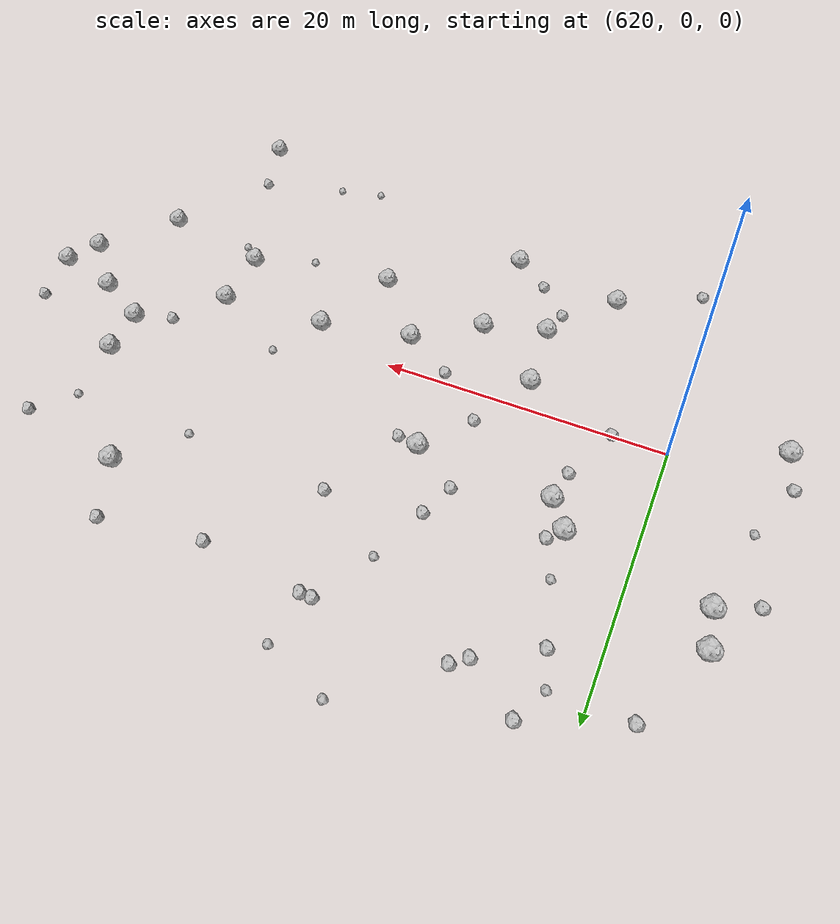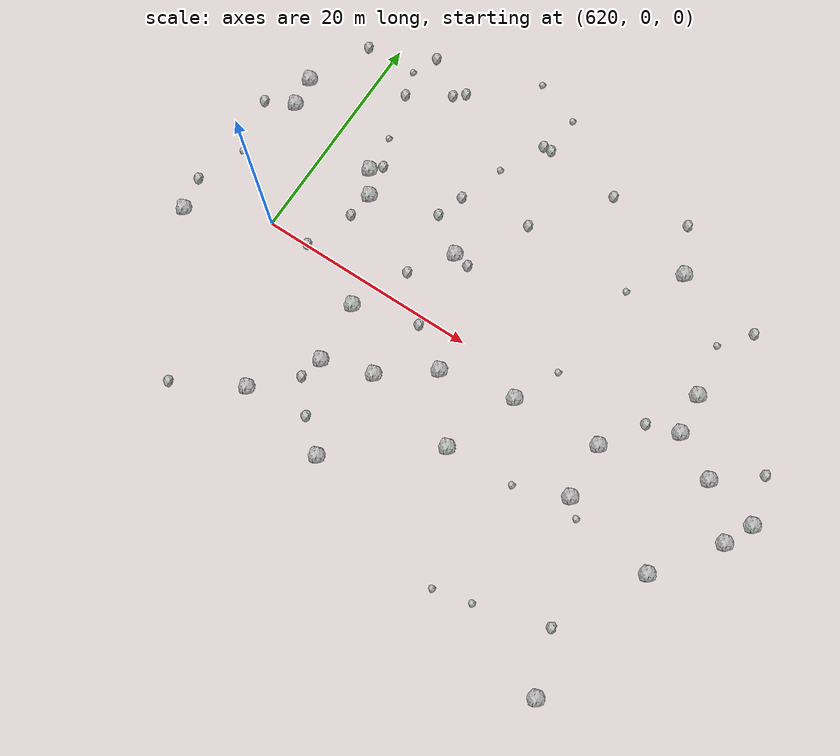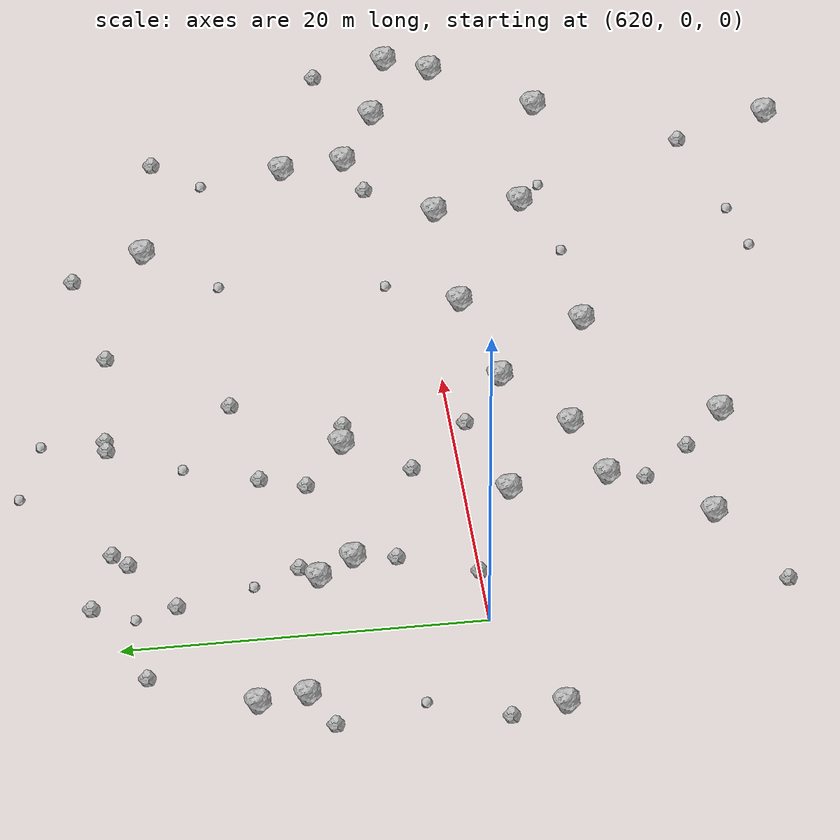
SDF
<sdf version="1.6">
 <world name="default">
  <include><uri>model://sun</uri></include>
  <model name="rock1_16_3">
   <include><uri>model://rock1</uri><pose>630.8154450928639 -7.932889221351591 0.5 0 0 0</pose></include>
  </model>
  <model name="rock1_16_4">
   <include><uri>model://rock1</uri><pose>663.5097029108947 1.1319846429065237 0.5 0 0 0</pose></include>
  </model>
  <model name="rock1_16_5">
   <include><uri>model://rock1</uri><pose>625.748624921509 6.756915886533903 0.5 0 0 0</pose></include>
  </model>
  <model name="rock1_16_6">
   <include><uri>model://rock1</uri><pose>630.2575597607987 -2.428134500840404 0.5 0 0 0</pose></include>
  </model>
  <model name="rock1_16_7">
   <include><uri>model://rock1</uri><pose>654.3668648091672 -1.3723912604112591 0.5 0 0 0</pose></include>
  </model>
  <model name="rock1_16_8">
   <include><uri>model://rock1</uri><pose>654.7077179614729 -6.343117035888216 0.5 0 0 0</pose></include>
  </model>
  <model name="rock1_16_9">
   <include><uri>model://rock1</uri><pose>660.9171693849238 -21.424856002348484 0.5 0 0 0</pose></include>
  </model>
  <model name="rock1_16_10">
   <include><uri>model://rock1</uri><pose>615.1779663735622 10.4533159929831 0.5 0 0 0</pose></include>
  </model>
  <model name="rock1_16_11">
   <include><uri>model://rock1</uri><pose>614.8407516752358 13.1697537534479 0.5 0 0 0</pose></include>
  </model>
  <model name="rock1_16_12">
   <include><uri>model://rock1</uri><pose>659.526074364443 3.25666021357884 0.5 0 0 0</pose></include>
  </model>
  <model name="rock1_16_13">
   <include><uri>model://rock1</uri><pose>612.8345161557804 -3.1511152966365508 0.5 0 0 0</pose></include>
  </model>
  <model name="rock1_16_14">
   <include><uri>model://rock1</uri><pose>624.361800174929 8.803067293032093 0.5 0 0 0</pose></include>
  </model>
  <model name="rock1_16_15">
   <include><uri>model://rock1</uri><pose>639.7185940753745 -3.190483686303711 0.5 0 0 0</pose></include>
  </model>
  <model name="rock1_16_16">
   <include><uri>model://rock1</uri><pose>663.2465457869657 -8.280023741431727 0.5 0 0 0</pose></include>
  </model>
  <model name="rock1_16_17">
   <include><uri>model://rock1</uri><pose>643.936844390696 -8.389508698008157 0.5 0 0 0</pose></include>
  </model>
  <model name="rock1_16_18">
   <include><uri>model://rock1</uri><pose>667.2190989181457 -2.7004065320523836 0.5 0 0 0</pose></include>
  </model>
  <model name="rock1_16_19">
   <include><uri>model://rock1</uri><pose>652.6855516471367 15.527646410879107 0.5 0 0 0</pose></include>
  </model>
  <model name="rock1_16_20">
   <include><uri>model://rock1</uri><pose>668.3928591723438 -0.19498571861639036 0.5 0 0 0</pose></include>
  </model>
  <model name="rock1_16_21">
   <include><uri>model://rock1</uri><pose>635.3028392953731 -14.916657535718876 0.5 0 0 0</pose></include>
  </model>
  <model name="rock1_16_22">
   <include><uri>model://rock1</uri><pose>635.0907181450273 6.258589487409253 0.5 0 0 0</pose></include>
  </model>
  <model name="rock1_16_23">
   <include><uri>model://rock1</uri><pose>626.9872990946752 -13.30249398510507 0.5 0 0 0</pose></include>
  </model>
  <model name="rock1_16_24">
   <include><uri>model://rock1</uri><pose>659.1156152641955 6.861521552667064 0.5 0 0 0</pose></include>
  </model>
  <model name="rock1_16_25">
   <include><uri>model://rock1</uri><pose>635.2794479255829 -6.5291390917065115 0.5 0 0 0</pose></include>
  </model>
  <model name="rock1_16_26">
   <include><uri>model://rock1</uri><pose>646.3740256460313 -1.7842494684525327 0.5 0 0 0</pose></include>
  </model>
  <model name="rock2_16_0">
   <include><uri>model://rock2</uri><pose>667.2345739720057 4.066101877020003 0.3 0 0 0</pose></include>
  </model>
  <model name="rock2_16_1">
   <include><uri>model://rock2</uri><pose>623.7472787860576 0.06350169430626451 0.3 0 0 0</pose></include>
  </model>
  <model name="rock2_16_2">
   <include><uri>model://rock2</uri><pose>622.8961979006892 16.6503281654026 0.3 0 0 0</pose></include>
  </model>
  <model name="rock2_16_3">
   <include><uri>model://rock2</uri><pose>643.754279756744 18.474067236592283 0.3 0 0 0</pose></include>
  </model>
  <model name="rock2_16_4">
   <include><uri>model://rock2</uri><pose>636.5351724261019 6.009415532582331 0.3 0 0 0</pose></include>
  </model>
  <model name="rock2_16_5">
   <include><uri>model://rock2</uri><pose>632.5295066696275 -12.612082334043006 0.3 0 0 0</pose></include>
  </model>
  <model name="rock2_16_6">
   <include><uri>model://rock2</uri><pose>623.229313393547 21.2519897638008 0.3 0 0 0</pose></include>
  </model>
  <model name="rock2_16_7">
   <include><uri>model://rock2</uri><pose>650.6170565523466 19.67872364875732 0.3 0 0 0</pose></include>
  </model>
  <model name="rock2_16_8">
   <include><uri>model://rock2</uri><pose>627.4238524369305 19.72100392324147 0.3 0 0 0</pose></include>
  </model>
  <model name="rock2_16_9">
   <include><uri>model://rock2</uri><pose>635.9772062320228 -0.752779404726077 0.3 0 0 0</pose></include>
  </model>
  <model name="rock2_16_10">
   <include><uri>model://rock2</uri><pose>625.3915681407742 4.388983172223909 0.3 0 0 0</pose></include>
  </model>
  <model name="rock2_16_11">
   <include><uri>model://rock2</uri><pose>636.031292803463 19.19087530686364 0.3 0 0 0</pose></include>
  </model>
  <model name="rock2_16_12">
   <include><uri>model://rock2</uri><pose>632.6202761016766 11.097813377908771 0.3 0 0 0</pose></include>
  </model>
  <model name="rock2_16_13">
   <include><uri>model://rock2</uri><pose>636.8109431130415 19.19011651504364 0.3 0 0 0</pose></include>
  </model>
  <model name="rock2_16_14">
   <include><uri>model://rock2</uri><pose>659.0076189424489 -16.092650122031674 0.3 0 0 0</pose></include>
  </model>
  <model name="rock2_16_15">
   <include><uri>model://rock2</uri><pose>656.6824702286957 2.375314275786849 0.3 0 0 0</pose></include>
  </model>
  <model name="rock2_16_16">
   <include><uri>model://rock2</uri><pose>612.6191148175677 9.23502654915918 0.3 0 0 0</pose></include>
  </model>
  <model name="rock2_16_17">
   <include><uri>model://rock2</uri><pose>638.9372387110654 12.031659902635326 0.3 0 0 0</pose></include>
  </model>
  <model name="rock2_16_18">
   <include><uri>model://rock2</uri><pose>621.0835022023202 -16.47121877966638 0.3 0 0 0</pose></include>
  </model>
  <model name="rock2_16_19">
   <include><uri>model://rock2</uri><pose>625.1688240665142 9.73997308762889 0.3 0 0 0</pose></include>
  </model>
  <model name="rock2_16_20">
   <include><uri>model://rock2</uri><pose>617.4148111484036 18.81455787078915 0.3 0 0 0</pose></include>
  </model>
  <model name="rock2_16_21">
   <include><uri>model://rock2</uri><pose>631.804031114169 8.603603742572204 0.3 0 0 0</pose></include>
  </model>
  <model name="rock2_16_22">
   <include><uri>model://rock2</uri><pose>632.4999125824395 2.6579126003345337 0.3 0 0 0</pose></include>
  </model>
  <model name="rock2_16_23">
   <include><uri>model://rock2</uri><pose>630.2521295448505 -9.993866448254856 0.3 0 0 0</pose></include>
  </model>
  <model name="rock2_16_24">
   <include><uri>model://rock2</uri><pose>626.5140663561162 18.93004381332345 0.3 0 0 0</pose></include>
  </model>
  <model name="rock2_16_25">
   <include><uri>model://rock2</uri><pose>660.3784648964381 14.219284831458246 0.3 0 0 0</pose></include>
  </model>
  <model name="rock2_16_26">
   <include><uri>model://rock2</uri><pose>612.1505797193515 -0.12968222118250594 0.3 0 0 0</pose></include>
  </model>
  <model name="rock3_16_0">
   <include><uri>model://rock3</uri><pose>649.2534338847746 11.505325004100065 0.2 0 0 0</pose></include>
  </model>
  <model name="rock3_16_1">
   <include><uri>model://rock3</uri><pose>652.6355369669886 -17.998956077561523 0.2 0 0 0</pose></include>
  </model>
  <model name="rock3_16_2">
   <include><uri>model://rock3</uri><pose>648.1939297904368 2.160429140860508 0.2 0 0 0</pose></include>
  </model>
  <model name="rock3_16_3">
   <include><uri>model://rock3</uri><pose>622.1736485888556 18.92122915232997 0.2 0 0 0</pose></include>
  </model>
  <model name="rock3_16_4">
   <include><uri>model://rock3</uri><pose>613.8028628653614 4.180336976350894 0.2 0 0 0</pose></include>
  </model>
  <model name="rock3_16_5">
   <include><uri>model://rock3</uri><pose>634.0163193843649 15.12752237409132 0.2 0 0 0</pose></include>
  </model>
  <model name="rock3_16_6">
   <include><uri>model://rock3</uri><pose>624.0224033206644 12.293373178149729 0.2 0 0 0</pose></include>
  </model>
  <model name="rock3_16_7">
   <include><uri>model://rock3</uri><pose>656.0359895675122 -7.6063495121379745 0.2 0 0 0</pose></include>
  </model>
  <model name="rock3_16_8">
   <include><uri>model://rock3</uri><pose>632.6702469737311 24.268289713481963 0.2 0 0 0</pose></include>
  </model>
  <model name="rock3_16_9">
   <include><uri>model://rock3</uri><pose>636.8629147803774 22.69855396910865 0.2 0 0 0</pose></include>
  </model>
  <model name="rock3_16_10">
   <include><uri>model://rock3</uri><pose>649.2856835091452 -18.776831881520113 0.2 0 0 0</pose></include>
  </model>
  <model name="rock3_16_11">
   <include><uri>model://rock3</uri><pose>658.2445413178118 11.566814187148879 0.2 0 0 0</pose></include>
  </model>
  <model name="rock3_16_12">
   <include><uri>model://rock3</uri><pose>650.110904422751 -8.122997577019863 0.2 0 0 0</pose></include>
  </model>
  <model name="rock3_16_13">
   <include><uri>model://rock3</uri><pose>627.4165623787168 19.69488328586486 0.2 0 0 0</pose></include>
  </model>
 </world>
</sdf>
